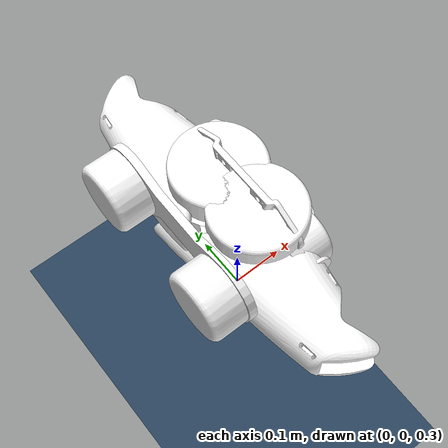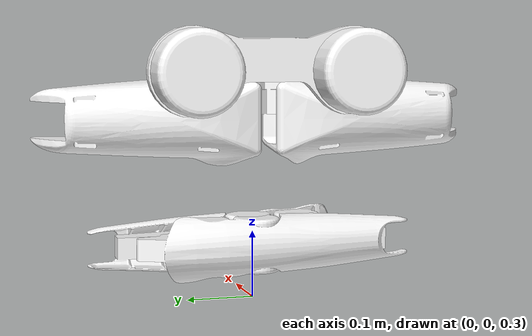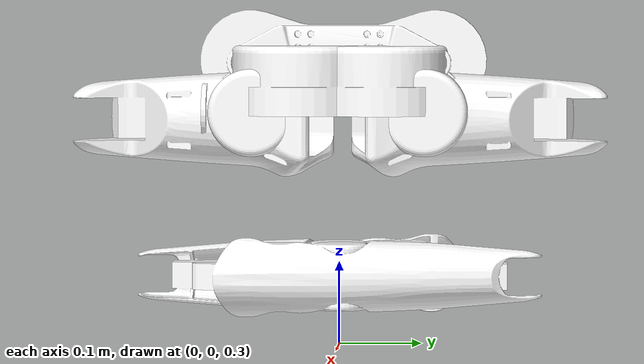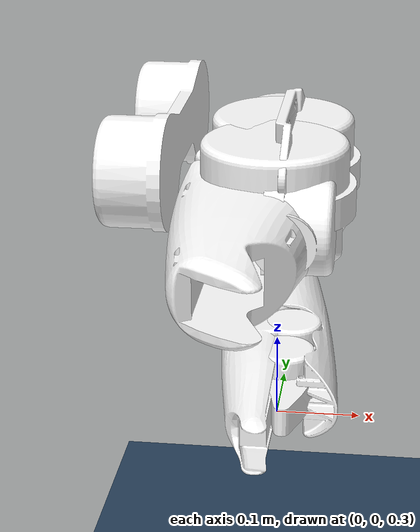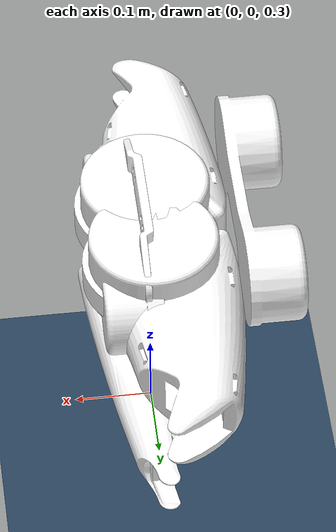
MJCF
<mujoco model="SF_bipedal">
  <option iterations="50" timestep="0.002" solver="PGS" gravity="0 0 -9.81" />

  <compiler angle="radian" meshdir="meshes" eulerseq="zyx" autolimits="true" />

  <visual>
        <headlight diffuse="0.6 0.6 0.6" ambient="0.3 0.3 0.3" specular="0 0 0"/>
        <rgba haze="0.15 0.25 0.35 1"/>
        <global azimuth="120" elevation="-20"/>
  </visual>

  <default>
    <joint limited="true" damping="1.0" armature="0.01" frictionloss="0.01" />

    <geom condim="4" contype="1" conaffinity="15" friction="1.0 0.005 0.0001" solref="0.02 1" />

    <motor ctrllimited="true" />
    <equality solref="0.001 2" />
    <default class="visualgeom">
      <geom material="visualgeom" condim="1" contype="0" conaffinity="0" />
    </default>
  </default>

  <asset>
    <mesh name="base_link" file="base_link.STL" />
    <mesh name="left_hip_pitch_link" file="left_hip_pitch_link.STL" />
    <mesh name="left_hip_roll_link" file="left_hip_roll_link.STL" />
    <mesh name="left_knee_link" file="left_knee_link.STL" />
    <mesh name="right_hip_pitch_link" file="right_hip_pitch_link.STL" />
    <mesh name="right_hip_roll_link" file="right_hip_roll_link.STL" />
    <mesh name="right_knee_link" file="right_knee_link.STL" />
    <material name="visualgeom" rgba="0.5 0.9 0.2 1" />
    <texture type="skybox" builtin="gradient" rgb1="0.3 0.5 0.7" rgb2="0 0 0" width="512" height="3072"/>
    <texture type="2d" name="groundplane" builtin="checker" rgb1="0.2 0.3 0.4" rgb2="0.1 0.2 0.3" width="100" height="100"/>
    <material name="groundplane" texture="groundplane" texrepeat="10 10"/>
  </asset>

  <worldbody>
    <light directional="true" diffuse="0.6 0.6 0.6" specular="0.2 0.2 0.2" pos="0 0 4" dir="0 0 -1" />
    <geom name="floor" size="10 10 0.1" type="plane" material="groundplane"/>
    <camera name="fixed" pos="0 -3.0 1.112" xyaxes="1 0 0 0 0 1" />
    <camera name="track" mode="trackcom" pos="0 -3.0 1.112" xyaxes="1 0 0 0 0 1" />

    <body name="root" pos="0 0 0.65" quat="1 0 0 0"> <freejoint name="root" />
      <inertial pos="0 0 0" mass="5.0" diaginertia="0.1 0.1 0.1" />
      <site name="imu" size="0.01" pos="0 0 0" />
      <geom type="mesh" rgba="1 1 1 1" mesh="base_link" contype="1" conaffinity="0" density="0" group="1" class="visualgeom" />
      <geom type="mesh" rgba="1 1 1 1" mesh="base_link" />

      <body name="left_hip_pitch_link" pos="0 0.049 -0.067" quat="-2.59734e-06 2.59735e-06 0.707105 0.707108">
        <inertial pos="-0.0023863 0 0.0511609" quat="0.999974 0 -0.0072359 0" mass="0.438" diaginertia="0.000389 0.000277 0.000216" />
        <joint name="left_hip_pitch_joint" pos="0 0 0" axis="0 0 -1" range="-1.57 1.57" actuatorfrcrange="-20 20" />
        <geom type="mesh" rgba="1 1 1 1" mesh="left_hip_pitch_link" contype="1" conaffinity="0" density="0" group="1" class="visualgeom" />
        <geom type="mesh" rgba="1 1 1 1" mesh="left_hip_pitch_link" />

        <body name="left_hip_roll_link" pos="-0.0205 0 0.055" quat="0.707105 0 -0.707108 0">
          <inertial pos="0.0054951 -0.164853 -0.0187913" quat="0.682348 0.730207 0.0345653 -0.00200213" mass="0.567" diaginertia="0.00257 0.00244 0.000306" />
          <joint name="left_hip_roll_joint" pos="0 0 0" axis="0 0 -1" range="-1.57 0.4" actuatorfrcrange="-20 20" />
          <geom type="mesh" rgba="1 1 1 1" mesh="left_hip_roll_link" contype="1" conaffinity="0" density="0" group="1" class="visualgeom" />
          <geom type="mesh" rgba="1 1 1 1" mesh="left_hip_roll_link" />

          <body name="left_knee_link" pos="0.0255 -0.2 -0.0205" quat="0.707105 0 0.707108 0">
            <inertial pos="-0.0037521 -0.171695 -0.0213662" quat="0.569544 0.588656 -0.427962 0.382036" mass="0.283" diaginertia="0.00246 0.00243 0.000108" />
            <joint name="left_knee_joint" pos="0 0 0" axis="0 0 1" range="-0.2 2.2" actuatorfrcrange="-20 20" />
            <geom type="mesh" rgba="1 1 1 1" mesh="left_knee_link" contype="1" conaffinity="0" density="0" group="1" class="visualgeom" />
            <geom type="mesh" rgba="1 1 1 1" mesh="left_knee_link" />
          </body>
        </body>
      </body>

      <body name="right_hip_pitch_link" pos="0 -0.049 -0.067" quat="0 0 -0.707107 0.707107">
        <inertial pos="-0.0023863 0 0.0511609" quat="0.999974 0 -0.0072359 0" mass="0.438" diaginertia="0.000389 0.000277 0.000216" />
        <joint name="right_hip_pitch_joint" pos="0 0 0" axis="0 0 -1" range="-1.57 1.57" actuatorfrcrange="-20 20" />
        <geom type="mesh" rgba="1 1 1 1" mesh="right_hip_pitch_link" contype="1" conaffinity="0" density="0" group="1" class="visualgeom" />
        <geom type="mesh" rgba="1 1 1 1" mesh="right_hip_pitch_link" />

        <body name="right_hip_roll_link" pos="-0.0205 0 0.055" quat="-2.59734e-06 0.707105 -2.59735e-06 -0.707108">
          <inertial pos="-0.0054951 -0.164853 -0.0187913" quat="0.681789 0.731079 -0.00512293 -0.0256989" mass="0.567" diaginertia="0.00257 0.00244 0.000306" />
          <joint name="right_hip_roll_joint" pos="0 0 0" axis="0 0 -1" range="-0.4 1.57" actuatorfrcrange="-20 20" />
          <geom type="mesh" rgba="1 1 1 1" mesh="right_hip_roll_link" contype="1" conaffinity="0" density="0" group="1" class="visualgeom" />
          <geom type="mesh" rgba="1 1 1 1" mesh="right_hip_roll_link" />

          <body name="right_knee_link" pos="-0.0255 -0.2 -0.0205" quat="0.707105 0 -0.707108 0">
            <inertial pos="0.0037519 -0.171695 -0.0213662" quat="0.503874 0.553178 -0.473009 0.465154" mass="0.283" diaginertia="0.00245 0.00244 0.000108" />
            <joint name="right_knee_joint" pos="0 0 0" axis="0 0 1" range="-2.2 0.2" actuatorfrcrange="-20 20" />
            <geom type="mesh" rgba="1 1 1 1" mesh="right_knee_link" contype="1" conaffinity="0" density="0" group="1" class="visualgeom" />
            <geom type="mesh" rgba="1 1 1 1" mesh="right_knee_link" />
          </body>
        </body>
      </body>
    </body>
  </worldbody>

  <actuator>
    <position name="left_hip_pitch_joint" joint="left_hip_pitch_joint" kp="40.0" kv="2.0" ctrllimited="true" ctrlrange="-10 10"/>
    <position name="right_hip_pitch_joint" joint="right_hip_pitch_joint" kp="40.0" kv="2.0" ctrllimited="true" ctrlrange="-10 10"/>
    <position name="left_hip_roll_joint" joint="left_hip_roll_joint" kp="40.0" kv="2.0" ctrllimited="true" ctrlrange="-10 10"/>
    <position name="right_hip_roll_joint" joint="right_hip_roll_joint" kp="40.0" kv="2.0" ctrllimited="true" ctrlrange="-10 10"/>
    <position name="left_knee_joint" joint="left_knee_joint" kp="40.0" kv="2.0" ctrllimited="true" ctrlrange="-10 10"/>
    <position name="right_knee_joint" joint="right_knee_joint" kp="40.0" kv="2.0" ctrllimited="true" ctrlrange="-10 10"/>
  </actuator>

  <sensor>
    <actuatorpos name="left_hip_pitch_joint_p" actuator="left_hip_pitch_joint" />
    <actuatorvel name="left_hip_pitch_joint_v" actuator="left_hip_pitch_joint" />
    <actuatorfrc name="left_hip_pitch_joint_f" actuator="left_hip_pitch_joint" noise="0.001" />
    <actuatorpos name="left_hip_roll_joint_p" actuator="left_hip_roll_joint" />
    <actuatorvel name="left_hip_roll_joint_v" actuator="left_hip_roll_joint" />
    <actuatorfrc name="left_hip_roll_joint_f" actuator="left_hip_roll_joint" noise="0.001" />
    <actuatorpos name="left_knee_joint_p" actuator="left_knee_joint" />
    <actuatorvel name="left_knee_joint_v" actuator="left_knee_joint" />
    <actuatorfrc name="left_knee_joint_f" actuator="left_knee_joint" noise="0.001" />
    <actuatorpos name="right_hip_pitch_joint_p" actuator="right_hip_pitch_joint" />
    <actuatorvel name="right_hip_pitch_joint_v" actuator="right_hip_pitch_joint" />
    <actuatorfrc name="right_hip_pitch_joint_f" actuator="right_hip_pitch_joint" noise="0.001" />
    <actuatorpos name="right_hip_roll_joint_p" actuator="right_hip_roll_joint" />
    <actuatorvel name="right_hip_roll_joint_v" actuator="right_hip_roll_joint" />
    <actuatorfrc name="right_hip_roll_joint_f" actuator="right_hip_roll_joint" noise="0.001" />
    <actuatorpos name="right_knee_joint_p" actuator="right_knee_joint" />
    <actuatorvel name="right_knee_joint_v" actuator="right_knee_joint" />
    <actuatorfrc name="right_knee_joint_f" actuator="right_knee_joint" noise="0.001" />
    <framequat name="orientation" objtype="site" noise="0.001" objname="imu" />
    <gyro name="angular-velocity" site="imu" noise="0.005" cutoff="34.9" />
  </sensor>
</mujoco>
